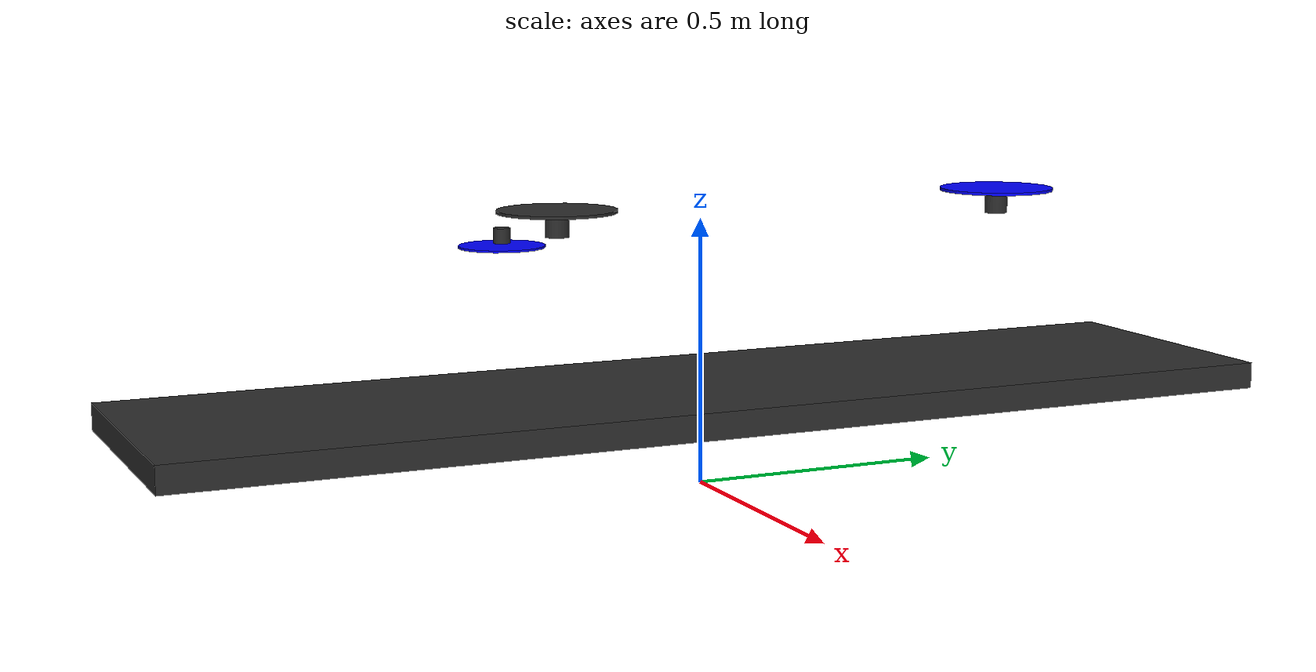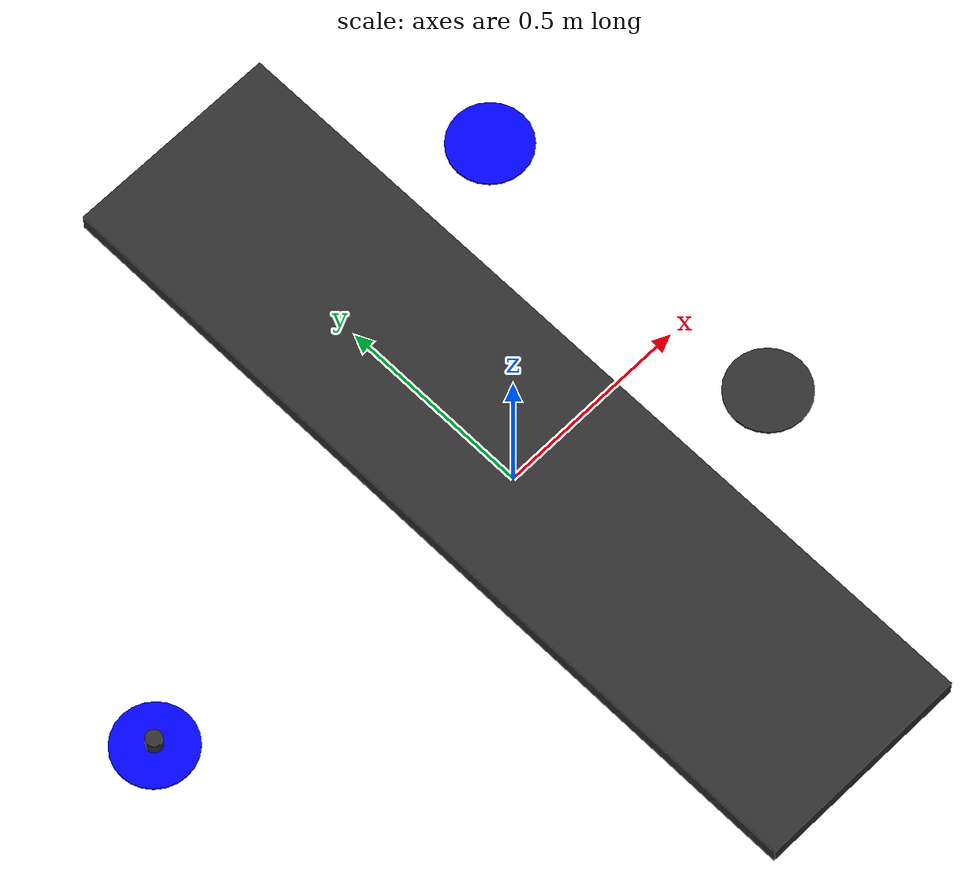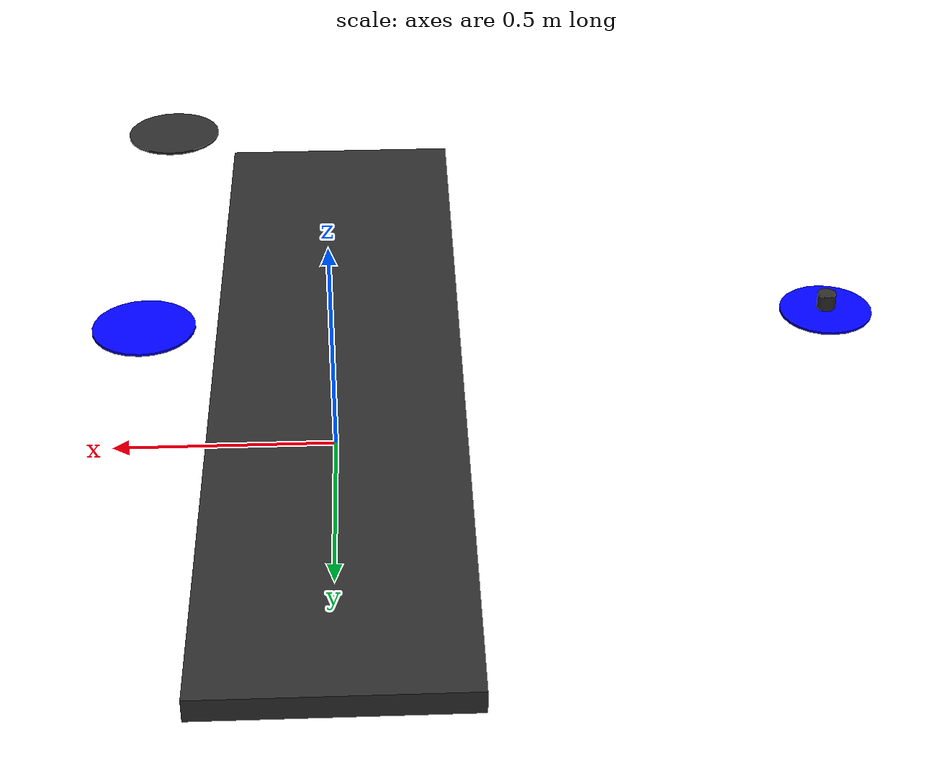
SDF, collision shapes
<?xml version="1.0" encoding="UTF-8"?>
<!-- DO NOT EDIT: Generated from standard_vtol.sdf.jinja -->
<sdf version='1.5'>
  <model name='tiltrotor'>
    <pose>0 0 0.246 0 0 0</pose>
    <link name='base_link'>
      <pose>0 0 0 0 0 0</pose>
      <inertial>
        <pose>0 0 0 0 0 0</pose>
        <mass>2.9</mass>
        <inertia>
          <ixx>0.197563</ixx>
          <ixy>0</ixy>
          <ixz>0</ixz>
          <iyy>0.1458929</iyy>
          <iyz>0</iyz>
          <izz>0.1477</izz>
        </inertia>
      </inertial>
      <collision name='base_link_collision'>
        <pose>-0.01 0 -0.08 0 0 0</pose>
        <geometry>
          <box>
            <size>0.55 2.144 0.05</size>
          </box>
        </geometry>
        <surface>
          <contact>
            <ode>
              <kp>100000</kp>
              <kd>1.0</kd>
              <max_vel>0.1</max_vel>
              <min_depth>0.001</min_depth>
            </ode>
          </contact>
          <friction>
            <ode/>
          </friction>
        </surface>
      </collision>
      <visual name='base_link_visual'>
        <pose>-1.1 -0.63 -0.1 1.5707963268 0 1.5707963268</pose> <!-- first 前后  second 左右  third 上下 -->
        <geometry>
          <mesh>
            <scale>0.002 0.002 0.002</scale>
            <uri>model://tiltrotor/M3.dae</uri>
          </mesh>
        </geometry>
        <material> <!-- DarkGrey-->
          <ambient>0.175 0.175 0.175 1.0</ambient>
          <diffuse>0.175 0.175 0.175 1.0</diffuse>
        </material>
      </visual>

      <gravity>1</gravity>
      <enable_wind>true</enable_wind>
      <velocity_decay/>
      <self_collide>0</self_collide>

      <sensor name="imu_sensor" type="imu">
        <always_on>1</always_on>
        <update_rate>250</update_rate>
        <imu>
          <angular_velocity>
            <x>
              <noise type="gaussian">
                <mean>0</mean>
                <stddev>0.0003394</stddev>
                <dynamic_bias_stddev>3.8785e-05</dynamic_bias_stddev>
                <dynamic_bias_correlation_time>1000</dynamic_bias_correlation_time>
              </noise>
            </x>
            <y>
              <noise type="gaussian">
                <mean>0</mean>
                <stddev>0.0003394</stddev>
                <dynamic_bias_stddev>3.8785e-05</dynamic_bias_stddev>
                <dynamic_bias_correlation_time>1000</dynamic_bias_correlation_time>
              </noise>
            </y>
            <z>
              <noise type="gaussian">
                <mean>0</mean>
                <stddev>0.0003394</stddev>
                <dynamic_bias_stddev>3.8785e-05</dynamic_bias_stddev>
                <dynamic_bias_correlation_time>1000</dynamic_bias_correlation_time>
              </noise>
            </z>
          </angular_velocity>
          <linear_acceleration>
            <x>
              <noise type="gaussian">
                <mean>0</mean>
                <stddev>0.004</stddev>
                <dynamic_bias_stddev>0.006</dynamic_bias_stddev>
                <dynamic_bias_correlation_time>300</dynamic_bias_correlation_time>
              </noise>
            </x>
            <y>
              <noise type="gaussian">
                <mean>0</mean>
                <stddev>0.004</stddev>
                <dynamic_bias_stddev>0.006</dynamic_bias_stddev>
                <dynamic_bias_correlation_time>300</dynamic_bias_correlation_time>
              </noise>
            </y>
            <z>
              <noise type="gaussian">
                <mean>0</mean>
                <stddev>0.004</stddev>
                <dynamic_bias_stddev>0.006</dynamic_bias_stddev>
                <dynamic_bias_correlation_time>300</dynamic_bias_correlation_time>
              </noise>
            </z>
          </linear_acceleration>
        </imu>
      </sensor>
      <sensor name="air_pressure_sensor" type="air_pressure">
        <always_on>1</always_on>
        <update_rate>50</update_rate>
        <air_pressure>
          <pressure>
            <noise type="gaussian">
              <mean>0</mean>
              <stddev>0.01</stddev>
            </noise>
          </pressure>
        </air_pressure>
      </sensor>
      <sensor name="magnetometer_sensor" type="magnetometer">
        <always_on>1</always_on>
        <update_rate>100</update_rate>
        <magnetometer>
          <!-- TODO: update to fix units and coordinate system when we move past Harmonic -->
          <!-- See https://github.com/gazebosim/gz-sim/pull/2460 -->
          <!-- 3mgauss RMS: NOTE: noise is in tesla but sensor reports data in gauss -->
          <!-- Noise modeled after IIS2MDC -->
          <x>
            <noise type="gaussian">
              <stddev>0.0001</stddev>
            </noise>
          </x>
          <y>
            <noise type="gaussian">
              <stddev>0.0001</stddev>
            </noise>
          </y>
          <z>
            <noise type="gaussian">
              <stddev>0.0001</stddev>
            </noise>
          </z>
        </magnetometer>
      </sensor>
      <sensor name="navsat_sensor" type="navsat">
        <always_on>1</always_on>
        <update_rate>30</update_rate>
      </sensor>
    </link>

    <include merge="true">
      <uri>model://airspeed</uri>
      <pose >0. 0. 0. 0. 0. 0.</pose>
    </include>
    <joint name='airspeed_joint' type='fixed'>
      <parent>base_link</parent>
      <child>airspeed_link</child>
      <pose relative_to="base_link">-0 0 0 0 0 0</pose>
    </joint>

    <link name='motor_0'>
      <pose>0.35 0.42 0.300 0 0 0</pose>  <!-- 0.025 upper is rotor_0, left front -->
      <inertial>
        <pose>0 0 0 0 0 0</pose>
        <mass>0.05</mass>
        <inertia>
          <ixx>0.0166704</ixx>
          <ixy>0</ixy>
          <ixz>0</ixz>
          <iyy>0.0166704</iyy>
          <iyz>0</iyz>
          <izz>0.0167604</izz>
        </inertia>
      </inertial>
      <collision name='motor_0_collision'>
        <pose>0 0 0 0 0 0</pose>
        <geometry>
          <cylinder>
            <length>0.035</length>
            <radius>0.02</radius>
          </cylinder>
        </geometry>
        <surface>
          <contact>
            <ode/>
          </contact>
          <friction>
            <ode/>
          </friction>
        </surface>
      </collision>
      <visual name='motor_0_visual'>
        <pose>0 0 0 0 0 0</pose>
        <geometry>
          <cylinder>
            <length>0.035</length>
            <radius>0.02</radius>
          </cylinder>
        </geometry>
        <material>
          <ambient>0.175 0.175 0.175 1.0</ambient>
          <diffuse>0.175 0.175 0.175 1.0</diffuse>
        </material>
      </visual>
      <gravity>1</gravity>
      <velocity_decay/>
      <self_collide>0</self_collide>
    </link>

    <joint name='motor_0_joint' type='revolute'>
      <child>motor_0</child>
      <parent>base_link</parent>
      <axis>
        <xyz>0 1 0</xyz>
        <limit>
          <lower>-0.785</lower>
          <upper>0.785</upper>
        </limit>
        <dynamics>
          <friction>1.0</friction>
          <spring_reference>0</spring_reference>
          <spring_stiffness>0</spring_stiffness>
        </dynamics>
        <use_parent_model_frame>1</use_parent_model_frame>
      </axis>
    </joint>

    <link name='rotor_0'>
      <pose>0.35 0.42 0.325 0 0 0</pose>
      <inertial>
        <pose>0 0 0 0 0 0</pose>
        <mass>0.005</mass>
        <inertia>
          <ixx>9.75e-07</ixx>
          <ixy>0</ixy>
          <ixz>0</ixz>
          <iyy>0.000166704</iyy>
          <iyz>0</iyz>
          <izz>0.000167604</izz>
        </inertia>
      </inertial>
      <collision name='rotor_0_collision'>
        <pose>0 0 0 0 0 0</pose>
        <geometry>
          <cylinder>
            <length>0.005</length>
            <radius>0.1</radius>
          </cylinder>
        </geometry>
        <surface>
          <contact>
            <ode/>
          </contact>
          <friction>
            <ode/>
          </friction>
        </surface>
      </collision>
      <visual name='rotor_0_visual'>
        <pose>0 0 0 0 0 0</pose>
        <geometry>
          <mesh>
            <scale>1 1 1</scale>
            <uri>model://standard_vtol/meshes/iris_prop_ccw.dae</uri>
          </mesh>
        </geometry>
        <material>  <!-- Blue -->
          <ambient>0 0 1 1.0</ambient>
          <diffuse>0 0 1 1.0</diffuse>
        </material>
      </visual>
      <gravity>1</gravity>
      <velocity_decay/>
      <self_collide>0</self_collide>
    </link>
    <joint name='rotor_0_joint' type='revolute'>
      <child>rotor_0</child>
      <parent>motor_0</parent>
      <axis>
        <xyz>0 0 1</xyz>
        <limit>
          <lower>-1e+16</lower>
          <upper>1e+16</upper>
        </limit>
        <dynamics>
          <spring_reference>0</spring_reference>
          <spring_stiffness>0</spring_stiffness>
        </dynamics>
        <use_parent_model_frame>1</use_parent_model_frame>
      </axis>
    </joint>

    <link name='motor_1'>
      <pose>0.35 -0.42 0.300 0 0 0</pose>  <!-- 右前电机 -->
      <inertial>
        <pose>0 0 0 0 0 0</pose>
        <mass>0.05</mass>
        <inertia>
          <ixx>0.0166704</ixx>
          <ixy>0</ixy>
          <ixz>0</ixz>
          <iyy>0.0166704</iyy>
          <iyz>0</iyz>
          <izz>0.0167604</izz>
        </inertia>
      </inertial>
      <collision name='motor_1_collision'>
        <pose>0 0 0 0 0 0</pose>
        <geometry>
          <cylinder>
            <length>0.035</length>
            <radius>0.02</radius>
          </cylinder>
        </geometry>
        <surface>
          <contact>
            <ode/>
          </contact>
          <friction>
            <ode/>
          </friction>
        </surface>
      </collision>
      <visual name='motor_1_visual'>
        <pose>0 0 0 0 0 0</pose>
        <geometry>
          <cylinder>
            <length>0.035</length>
            <radius>0.02</radius>
          </cylinder>
        </geometry>
        <material>
          <ambient>0.175 0.175 0.175 1.0</ambient>
          <diffuse>0.175 0.175 0.175 1.0</diffuse>
        </material>
      </visual>
      <gravity>1</gravity>
      <velocity_decay/>
      <self_collide>0</self_collide>
    </link>

    <joint name='motor_1_joint' type='revolute'>
      <child>motor_1</child>
      <parent>base_link</parent>
      <axis>
        <xyz>0 1 0</xyz>
        <limit>
          <lower>-0.785</lower>
          <upper>0.785</upper>
        </limit>
        <dynamics>
          <friction>1.0</friction>
          <spring_reference>0</spring_reference>
          <spring_stiffness>0</spring_stiffness>
        </dynamics>
        <use_parent_model_frame>1</use_parent_model_frame>
      </axis>
    </joint>

    <link name='rotor_1'>
      <pose>0.35 -0.42 0.325 0 0 0</pose>  <!-- 右前旋翼 -->
      <inertial>
        <pose>0 0 0 0 0 0</pose>
        <mass>0.005</mass>
        <inertia>
          <ixx>9.75e-07</ixx>
          <ixy>0</ixy>
          <ixz>0</ixz>
          <iyy>0.000166704</iyy>
          <iyz>0</iyz>
          <izz>0.000167604</izz>
        </inertia>
      </inertial>
      <collision name='rotor_1_collision'>
        <pose>0 0 0 0 0 0</pose>
        <geometry>
          <cylinder>
            <length>0.005</length>
            <radius>0.1</radius>
          </cylinder>
        </geometry>
        <surface>
          <contact>
            <ode/>
          </contact>
          <friction>
            <ode/>
          </friction>
        </surface>
      </collision>
      <visual name='rotor_1_visual'>
        <pose>0 0 0 0 0 0</pose>
        <geometry>
          <mesh>
            <scale>1 1 1</scale>
            <uri>model://standard_vtol/meshes/iris_prop_cw.dae</uri>
          </mesh>
        </geometry>
        <material> <!-- DarkGrey-->
          <ambient>0.175 0.175 0.175 1.0</ambient>
          <diffuse>0.175 0.175 0.175 1.0</diffuse>
        </material>
      </visual>
      <gravity>1</gravity>
      <velocity_decay/>
      <self_collide>0</self_collide>
    </link>
    <joint name='rotor_1_joint' type='revolute'>
      <child>rotor_1</child>
      <parent>motor_1</parent>
      <axis>
        <xyz>0 0 1</xyz>
        <limit>
          <lower>-1e+16</lower>
          <upper>1e+16</upper>
        </limit>
        <dynamics>
          <spring_reference>0</spring_reference>
          <spring_stiffness>0</spring_stiffness>
        </dynamics>
        <use_parent_model_frame>1</use_parent_model_frame>
      </axis>
    </joint>

    <!-- 后部可倾转电机 -->
    <link name='motor_2'>
      <pose>-1.08 0 0.1 0 0 0</pose>  <!-- 后部中央位置 -->
      <inertial>
        <pose>0 0 0 0 0 0</pose>
        <mass>0.05</mass>
        <inertia>
          <ixx>0.0166704</ixx>
          <ixy>0</ixy>
          <ixz>0</ixz>
          <iyy>0.0166704</iyy>
          <iyz>0</iyz>
          <izz>0.0167604</izz>
        </inertia>
      </inertial>
      <collision name='motor_2_collision'>
        <pose>0 0 0 0 0 0</pose>
        <geometry>
          <cylinder>
            <length>0.035</length>
            <radius>0.02</radius>
          </cylinder>
        </geometry>
        <surface>
          <contact>
            <ode/>
          </contact>
          <friction>
            <ode/>
          </friction>
        </surface>
      </collision>
      <visual name='motor_2_visual'>
        <pose>0 0 0 0 0 0</pose>
        <geometry>
          <cylinder>
            <length>0.035</length>
            <radius>0.02</radius>
          </cylinder>
        </geometry>
        <material>
          <ambient>0.175 0.175 0.175 1.0</ambient>
          <diffuse>0.175 0.175 0.175 1.0</diffuse>
        </material>
      </visual>
      <gravity>1</gravity>
      <velocity_decay/>
      <self_collide>0</self_collide>
    </link>

    <!-- 后部旋翼 -->
    <link name='rotor_2'>
      <pose>-1.08 0 0.075 0 0 0</pose>  <!-- 电机上方25mm -->
      <inertial>
        <pose>0 0 0 0 0 0</pose>
        <mass>0.005</mass>
        <inertia>
          <ixx>9.75e-07</ixx>
          <ixy>0</ixy>
          <ixz>0</ixz>
          <iyy>0.000166704</iyy>
          <iyz>0</iyz>
          <izz>0.000167604</izz>
        </inertia>
      </inertial>
      <collision name='rotor_2_collision'>
        <pose>0 0 0 0 0 0</pose>
        <geometry>
          <cylinder>
            <length>0.005</length>
            <radius>0.1</radius>
          </cylinder>
        </geometry>
        <surface>
          <contact>
            <ode/>
          </contact>
          <friction>
            <ode/>
          </friction>
        </surface>
      </collision>
      <visual name='rotor_2_visual'>
        <pose>0 0 0 0 0 0</pose>
        <geometry>
          <mesh>
            <scale>1 1 1</scale>
            <uri>model://standard_vtol/meshes/iris_prop_ccw.dae</uri>
          </mesh>
        </geometry>
        <material>  <!-- Blue -->
          <ambient>0 0 1 1.0</ambient>
          <diffuse>0 0 1 1.0</diffuse>
        </material>
      </visual>
      <gravity>1</gravity>
      <velocity_decay/>
      <self_collide>0</self_collide>
    </link>
    <!-- 后部电机倾转关节 -->
    <joint name='motor_2_joint' type='revolute'>
      <child>motor_2</child>
      <parent>base_link</parent>
      <axis>
        <xyz>0 1 0</xyz>
        <limit>
          <lower>-0.785</lower>
          <upper>0.785</upper>
        </limit>
        <dynamics>
          <friction>1.0</friction>
          <spring_reference>0</spring_reference>
          <spring_stiffness>0</spring_stiffness>
        </dynamics>
        <use_parent_model_frame>1</use_parent_model_frame>
      </axis>
    </joint>

    <!-- 后部旋翼旋转关节 -->
    <joint name='rotor_2_joint' type='revolute'>
      <child>rotor_2</child>
      <parent>motor_2</parent>
      <axis>
        <xyz>0 0 1</xyz>
        <limit>
          <lower>-1e+16</lower>
          <upper>1e+16</upper>
        </limit>
        <dynamics>
          <spring_reference>0</spring_reference>
          <spring_stiffness>0</spring_stiffness>
        </dynamics>
        <use_parent_model_frame>1</use_parent_model_frame>
      </axis>
    </joint>
    <!-- 后部电机倾转控制 -->
    <plugin
      filename="gz-sim-joint-position-controller-system" name="gz::sim::systems::JointPositionController">
      <joint_name>motor_2_joint</joint_name>
      <sub_topic>servo_2</sub_topic>
      <p_gain>100</p_gain>
      <i_gain>0</i_gain>
      <d_gain>0</d_gain>
      <i_max>0.0</i_max>
      <i_min>0.0</i_min>
      <cmd_max>2</cmd_max>
      <cmd_min>-2</cmd_min>
      <err_max>0.2</err_max>
    </plugin>

    <!-- 后部旋翼电机控制 -->
    <plugin filename="gz-sim-multicopter-motor-model-system" name="gz::sim::systems::MulticopterMotorModel">
      <jointName>rotor_2_joint</jointName>
      <linkName>rotor_2</linkName>
      <turningDirection>ccw</turningDirection>
      <timeConstantUp>0.0125</timeConstantUp>
      <timeConstantDown>0.025</timeConstantDown>
      <maxRotVelocity>1500</maxRotVelocity>
      <motorConstant>2e-05</motorConstant>
      <momentConstant>0.06</momentConstant>
      <commandSubTopic>command/motor_speed</commandSubTopic>
      <motorNumber>2</motorNumber>
      <rotorDragCoefficient>0.0000806428</rotorDragCoefficient>
      <rollingMomentCoefficient>1e-06</rollingMomentCoefficient>
      <rotorVelocitySlowdownSim>20</rotorVelocitySlowdownSim>
      <motorType>velocity</motorType>
    </plugin>
    <plugin filename="gz-sim-multicopter-motor-model-system" name="gz::sim::systems::MulticopterMotorModel">
      <jointName>rotor_0_joint</jointName>
      <linkName>rotor_0</linkName>
      <turningDirection>ccw</turningDirection>
      <timeConstantUp>0.0125</timeConstantUp>
      <timeConstantDown>0.025</timeConstantDown>
      <maxRotVelocity>1500</maxRotVelocity>
      <motorConstant>2e-05</motorConstant>
      <momentConstant>0.06</momentConstant>
      <commandSubTopic>command/motor_speed</commandSubTopic>
      <motorNumber>0</motorNumber>
      <rotorDragCoefficient>0.0000806428</rotorDragCoefficient>
      <rollingMomentCoefficient>1e-06</rollingMomentCoefficient>
      <rotorVelocitySlowdownSim>20</rotorVelocitySlowdownSim>
      <motorType>velocity</motorType>
    </plugin>
    <plugin
      filename="gz-sim-joint-position-controller-system" name="gz::sim::systems::JointPositionController">
      <joint_name>motor_0_joint</joint_name>
      <sub_topic>servo_0</sub_topic>
      <p_gain>100</p_gain>
      <i_gain>0</i_gain>
      <d_gain>0</d_gain>
      <i_max>0.0</i_max>
      <i_min>0.0</i_min>
      <cmd_max>2</cmd_max>
      <cmd_min>-2</cmd_min>
      <err_max>0.2</err_max>
    </plugin>
    <plugin filename="gz-sim-multicopter-motor-model-system" name="gz::sim::systems::MulticopterMotorModel">
      <jointName>rotor_1_joint</jointName>
      <linkName>rotor_1</linkName>
      <turningDirection>cw</turningDirection>
      <timeConstantUp>0.0125</timeConstantUp>
      <timeConstantDown>0.025</timeConstantDown>
      <maxRotVelocity>1500</maxRotVelocity>
      <motorConstant>2e-05</motorConstant>
      <momentConstant>0.06</momentConstant>
      <commandSubTopic>command/motor_speed</commandSubTopic>
      <motorNumber>1</motorNumber>
      <rotorDragCoefficient>0.0000806428</rotorDragCoefficient>
      <rollingMomentCoefficient>1e-06</rollingMomentCoefficient>
      <rotorVelocitySlowdownSim>20</rotorVelocitySlowdownSim>
      <motorType>velocity</motorType>
    </plugin>
    <plugin
      filename="gz-sim-joint-position-controller-system" name="gz::sim::systems::JointPositionController">
      <joint_name>motor_1_joint</joint_name>
      <sub_topic>servo_1</sub_topic>
      <p_gain>100</p_gain>
      <i_gain>0</i_gain>
      <d_gain>0</d_gain>
      <i_max>0.0</i_max>
      <i_min>0.0</i_min>
      <cmd_max>2</cmd_max>
      <cmd_min>-2</cmd_min>
      <err_max>0.2</err_max>
    </plugin>

    <plugin filename="gz-sim-advanced-lift-drag-system" name="gz::sim::systems::AdvancedLiftDrag">
      <a0>0.0</a0>
      <CL0>0.15188</CL0>
      <AR>8.5</AR>
      <eff>0.97</eff>
      <CLa>5.015</CLa>
      <cda>1.5</cda>
      <CD0>0.15</CD0>
      <Cem0>0.075</Cem0>
      <Cema>-0.463966</Cema>
      <CYb>-0.258244</CYb>
      <Cellb>-0.039250</Cellb>
      <Cenb>0.100826</Cenb>
      <CDp>0.0</CDp>
      <CYp>0.065861</CYp>
      <CLp>0.0</CLp>
      <Cellp>-0.487407</Cellp>
      <Cemp>0.0</Cemp>
      <Cenp>-0.040416</Cenp>
      <CDq>0.055166</CDq>
      <CYq>0.0</CYq>
      <CLq>7.971792</CLq>
      <Cellq>0.0</Cellq>
      <Cemq>-12.140140</Cemq>
      <Cenq>0.0</Cenq>
      <CDr>0.0</CDr>
      <CYr>0.230299</CYr>
      <CLr>0.0</CLr>
      <Cellr>0.078165</Cellr>
      <Cemr>0.0</Cemr>
      <Cenr>-0.089947</Cenr>
      <alpha_stall>0.3391428111</alpha_stall>
      <CLa_stall>-3.85</CLa_stall>
      <CDa_stall>-0.9233984055</CDa_stall>
      <Cema_stall>0</Cema_stall>
      <ref_pt>-0.12 0.0 0.0</ref_pt>
      <area>0.5</area>
      <mac>0.22</mac>
      <air_density>1.2041</air_density>
      <forward>1 0 0</forward>
      <upward>0 0 1</upward>
      <link_name>base_link</link_name>
      <num_ctrl_surfaces>0</num_ctrl_surfaces>
    </plugin>
    <static>0</static>
  </model>
</sdf>

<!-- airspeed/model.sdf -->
<sdf version="1.6">
  <model name="airspeed">
    <link name="airspeed_link">
      <pose>0 0 0 0 0 0</pose>
      <inertial>
        <pose>0 0 0 0 0 0</pose>
        <mass>0.015</mass>
        <inertia>
          <ixx>1e-05</ixx>
          <ixy>0</ixy>
          <ixz>0</ixz>
          <iyy>1e-05</iyy>
          <iyz>0</iyz>
          <izz>1e-05</izz>
        </inertia>
      </inertial>
      <visual name="visual">
        <pose>0 0 0 0 1.57 0</pose>
        <geometry>
          <cylinder>
            <radius>0.004</radius>
            <length>0.08</length>
          </cylinder>
        </geometry> <!-- Black -->
        <material>
          <diffuse>0.0 0.0 0.0</diffuse>
          <specular>0.5 0.5 0.5</specular>
        </material>
      </visual>
      <sensor name="air_speed" type="air_speed">
        <pose>0 0 0 0 0 0</pose>
        <update_rate>5.0</update_rate>
        <always_on>1</always_on>
        <visualize>false</visualize>
      </sensor>
    </link>
  </model>
</sdf>
